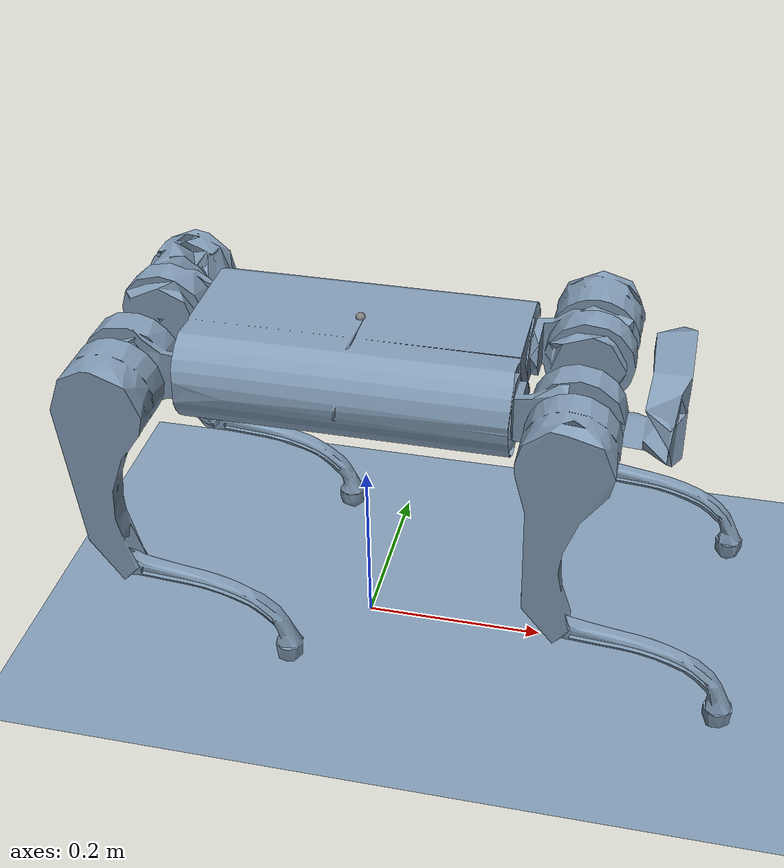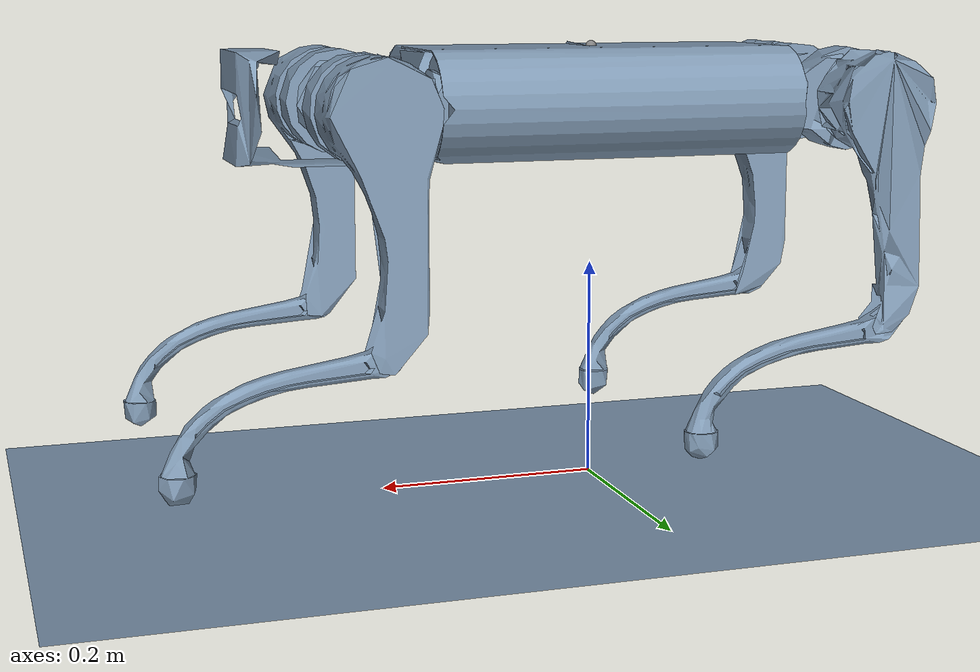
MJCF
<mujoco model="v1 scene">
  <include file="dogvlai.xml"/>

  <statistic center="1.0 0.7 1.0" extent="0.8"/>

  <visual>
    <headlight diffuse="0.6 0.6 0.6" ambient="0.1 0.1 0.1" specular="0.9 0.9 0.9"/>
    <rgba haze="0.15 0.25 0.35 1"/>
    <global azimuth="-140" elevation="-20"/>
  </visual>

  <asset>
    <texture type="skybox" builtin="flat" rgb1="0.5 0.5 0.5" rgb2="0.5 0.5 0.5" width="512" height="3072"/>
    <texture type="2d" name="groundplane" builtin="checker" mark="edge" rgb1="0 0.933 0.933" rgb2="0.6 1 1" markrgb="0.8 0.8 0.8" width="300" height="300"/>
    <material name="groundplane" texture="groundplane" texuniform="true" texrepeat="5 5" reflectance="0.2" />
  </asset>

  <worldbody>
    <light pos="1 0 3.5" dir="0 0 -1" directional="true"/>
    <geom name="floor" size="0 0 0.05" type="plane" material="groundplane" friction="2.0 0.005 0.0001" />
  </worldbody>
</mujoco>

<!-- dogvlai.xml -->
<mujoco model="dogVLAI">

  <compiler angle="radian" meshdir="../meshes/" />
    <size njmax="500" nconmax="100" />
    <option gravity='0 0 -9.806' iterations='50' solver='Newton' timestep='0.004'/>

    <default>
        <geom contype="1" conaffinity="1" friction="0.6 0.3 0.3" rgba="0.5 0.6 0.7 1" margin="0.001" group="0"/>

        <light castshadow="false" diffuse="1 1 1"/>
        <motor ctrlrange="-60 60" ctrllimited="true"/>
        <camera fovy="60"/>
        <joint damping="1" armature="0.01" frictionloss="0.1" />

    </default>

  <asset>
    <material name="orange" rgba="0.12 0.15 0.2 1.0" />
    <material name="red" rgba="0.89804 0.91765 0.92941 1" />
    <material name="default_material" rgba="0.7 0.7 0.7 1" />
    <material name="collision_material" rgba="1.0 0.28 0.1 0.9" />
    <mesh name="base_link.STL" file="../meshes/base_link.STL" />
    <mesh name="leg_FR1_link.STL" file="../meshes/leg_FR1_link.STL" />
    <mesh name="leg_FR2_link.STL" file="../meshes/leg_FR2_link.STL" />
    <mesh name="leg_FR3_link.STL" file="../meshes/leg_FR3_link.STL" />
    <mesh name="leg_FL1_link.STL" file="../meshes/leg_FL1_link.STL" />
    <mesh name="leg_FL2_link.STL" file="../meshes/leg_FL2_link.STL" />
    <mesh name="leg_FL3_link.STL" file="../meshes/leg_FL3_link.STL" />
    <mesh name="leg_BL1_link.STL" file="../meshes/leg_BL1_link.STL" />
    <mesh name="leg_BL2_link.STL" file="../meshes/leg_BL2_link.STL" />
    <mesh name="leg_BL3_link.STL" file="../meshes/leg_BL3_link.STL" />
    <mesh name="leg_BR1_link.STL" file="../meshes/leg_BR1_link.STL" />
    <mesh name="leg_BR2_link.STL" file="../meshes/leg_BR2_link.STL" />
    <mesh name="leg_BR3_link.STL" file="../meshes/leg_BR3_link.STL" />
  </asset>

<default>
    <default class="robot">
      <default class="motor">
        <joint />
        <motor />
      </default>
      <default class="visual">
        <geom material="visualgeom" contype="0" conaffinity="0" group="2" />
      </default>
      <default class="collision">
        <geom material="collision_material" condim="3" contype="0" conaffinity="1" priority="1" group="1" solref="0.005 1" friction="1 0.01 0.01" />
        <equality solimp="0.99 0.999 1e-05" solref="0.005 1" />
      </default>
    </default>
  </default>

  <visual>
      <headlight diffuse="0.6 0.6 0.6" ambient="0.1 0.1 0.1" specular="0.9 0.9 0.9"/>
      <rgba haze="0.15 0.25 0.35 1"/>
      <global azimuth="-140" elevation="-20"/>
  </visual>

  <worldbody>
    <camera name="track" mode="trackcom" pos="0 -1.3 1.6" xyaxes="1 0 0 0 0.707 0.707"/>

    <body name="base" pos="0. 0. 0.4" quat="1 0 0 0" >
      <freejoint name="floating_base" />
      <geom name="base_visual" pos="0 0 0" quat="1.0 0.0 0.0 0.0" material="default_material" type="box" size="0.0005 0.0005 0.0005" class="visual" />

      <body name="base_link" pos="0 0 0" quat="1.0 0.0 0.0 0.0">
        <inertial pos=" 0 0 0" quat="1.0 0.0 0.0 0.0" mass="3.432" diaginertia="0.0039586 0.0079714 0.00896" />
        <geom name="base_link_collision" pos="0 0 0"  quat="1.0 0.0 0.0 0.0"            type="mesh" mesh="base_link.STL" class="collision" />
        <geom name="base_link_visual"    pos="0 0 0"  quat="1 0 0.0 0.0" material="red" type="mesh" mesh="base_link.STL" class="visual" />

        <site name="imu" pos="0 0 0"/>
        <body name="FL1_hip_link" pos="0.168999872360919 0.0520307406591373 -0.0485" quat="1.0 0.0 0.0 0.0">
          <joint name="FL1_hip_joint" pos="0 0 0" axis="1 0 0" limited="true" range="-0.873 0.8" />
          <inertial pos="0.016891 -0.0002017 1.016E-12" quat="1.0 0.0 0.0 0.0" mass="1.5778" diaginertia="0.0012639 0.0012658 0.0010036" />
          <geom name="FL1_hip_link_visual" pos="0 0 0" quat="1 0 0.0 0.0" material="red" type="mesh" mesh="leg_FL1_link.STL" class="visual" />
          <body name="FL2_thigh_link" pos="0.06 0.0245 0" quat="1.0 0.0 0.0 0.0">
            <joint name="FL2_thigh_joint" pos="0 0 0" axis="0 1 0" limited="true" range="-0.524 3.927" />
            <inertial pos="-0.0020653 0.035858 -0.014157" quat="1.0 0.0 0.0 0.0" mass="1.1111" diaginertia="0.0021475 0.0025741 0.00068032" />
            <geom name="FL2_thigh_link_collision" pos="0 0 0" quat="1.0 0.0 0.0 0.0" type="mesh" mesh="leg_FL2_link.STL" class="collision" />
            <geom name="FL2_thigh_link_visual" pos="0 0 0" quat="1 0 0.0 0.0" material="red" type="mesh" mesh="leg_FL2_link.STL" class="visual" />
            <body name="FL3_calf_link" pos="0.0025 0.0584 -0.19998" quat="1.0 0.0 0.0 0.0">
              <joint name="FL3_calf_joint"  pos="0 0 0" axis="0 1 0" limited="true" range="-1.5 0.6" />
              <inertial pos="0.10213 0.00074994 -0.040058" quat="1.0 0.0 0.0 0.0" mass="0.17626" diaginertia="9.9523e-05 0.00066828 0.0005781" />
              <geom name="FL3_calf_link_collision" pos="0.0 0 0.0" quat="1.0 0.0 0.0 0.0" type="mesh" mesh="leg_FL3_link.STL" class="collision" />
              <geom name="FL3_calf_link_visual" pos="0 0 0" quat="1 0 0.0 0.0" material="red" type="mesh" mesh="leg_FL3_link.STL" class="visual" />
            </body>
          </body>
        </body>
        <body name="FR1_hip_link" pos="0.168999872360919 -0.0519692593408627 -0.0485" quat="1.0 0.0 0.0 0.0">
          <joint name="FR1_hip_joint" pos="0 0 0" axis="1 0 0" limited="true" range="-0.873 0.8" />
          <inertial pos="0.016891 0.0002017 -1.0145E-12" quat="1.0 0.0 0.0 0.0" mass="1.5778" diaginertia="0.0012639 0.0012658 0.0010036" />
          <geom name="FR1_hip_link_visual" pos="0 0 0" quat="1 0 0.0 0.0" material="red" type="mesh" mesh="leg_FR1_link.STL" class="visual" />
          <body name="FR2_thigh_link" pos="0.06 -0.024225 -0.0036585" quat="1.0 0.0 0.0 0.0">
            <joint name="FR2_thigh_joint" pos="0 0 0" axis="0 1 0" limited="true" range="-0.524 3.927" />
            <inertial pos="-0.0020653 -0.035858 -0.014157" quat="1.0 0.0 0.0 0.0" mass="1.1376" diaginertia="0.0022579 0.0026941 0.00069081" />
            <geom name="FR2_thigh_link_collision" pos="0 0 0" quat="1.0 0.0 0.0 0.0" type="mesh" mesh="leg_FR2_link.STL" class="collision" />
            <geom name="FR2_thigh_link_visual" pos="0 0 0" quat="1 0 0.0 0.0" material="red" type="mesh" mesh="leg_FR2_link.STL" class="visual" />
            <body name="FR3_calf_link" pos="0.0025 -0.059525 -0.19632" quat="1.0 0.0 0.0 0.0">
              <joint name="FR3_calf_joint"  pos="0 0 0" axis="0 1 0" limited="true" range="-1.5 0.6"   />
              <inertial pos="0.10213 0.00074994 -0.040058" quat="1.0 0.0 0.0 0.0" mass="0.17626" diaginertia="9.9523e-05 0.00066828 0.0005781" />
              <geom name="FR3_calf_link_collision" pos="0.0 0 0.0" quat="1.0 0.0 0.0 0.0" type="mesh" mesh="leg_FR3_link.STL" class="collision" />
              <geom name="FR3_calf_link_visual" pos="0 0 0" quat="1 0 0.0 0.0" material="red" type="mesh" mesh="leg_FR3_link.STL" class="visual" />
            </body>
          </body>
        </body>
      <body name="BL1_hip_link" pos="-0.169000127639083 0.0519707406591368 -0.048525" quat="1.0 0.0 0.0 0.0">
          <joint name="BL1_hip_joint" pos="0 0 0" axis="1 0 0" limited="true" range="-0.873 0.8" />
          <inertial pos="-0.016891 -0.0002017 -1.0162E-12" quat="1.0 0.0 0.0 0.0" mass="1.5778" diaginertia="0.0012639 0.0012658 0.0010036" />
          <geom name="BL1_hip_link_visual" pos="0 0 0" quat="1 0 0.0 0.0" material="red" type="mesh" mesh="leg_BL1_link.STL" class="visual" />
          <body name="BL2_thigh_link" pos="-0.0600000002585732 0.0244999956993991 0" quat="1.0 0.0 0.0 0.0">
            <joint name="BL2_thigh_joint" pos="0 0 0" axis="0 1 0" limited="true" range="-0.524 3.927" />
            <inertial pos="-0.0020653 0.035858 -0.014157" quat="1.0 0.0 0.0 0.0" mass="1.1151" diaginertia="0.0021439 0.0025741 0.00068394" />
            <geom name="BL2_thigh_link_collision" pos="0 0 0" quat="1.0 0.0 0.0 0.0" type="mesh" mesh="leg_BL2_link.STL" class="collision" />
            <geom name="BL2_thigh_link_visual" pos="0 0 0" quat="1 0 0.0 0.0" material="red" type="mesh" mesh="leg_BL2_link.STL" class="visual" />
            <body name="BL3_calf_link" pos="0.0025 0.0584 -0.19998" quat="1.0 0.0 0.0 0.0">
              <joint name="BL3_calf_joint"  pos="0 0 0" axis="0 1 0" limited="true" range="-1.5 0.6" />
              <inertial pos="0.10213 0.00074994 -0.040058" quat="1.0 0.0 0.0 0.0" mass="0.17626" diaginertia="9.9523e-05 0.00066828 0.0005781" />
              <geom name="BL3_calf_link_collision" pos="0.0 0 0.0" quat="1.0 0.0 0.0 0.0" type="mesh" mesh="leg_BL3_link.STL" class="collision" />
              <geom name="BL3_calf_link_visual" pos="0 0 0" quat="1 0 0.0 0.0" material="red" type="mesh" mesh="leg_BL3_link.STL" class="visual" />
            </body>
          </body>
        </body>
        <body name="BR1_hip_link" pos="-0.169 -0.052029 -0.048525" quat="1.0 0.0 0.0 0.0">
          <joint name="BR1_hip_joint" pos="0 0 0" axis="1 0 0" limited="true" range="-0.873 0.8" />
          <inertial pos="-0.016891 0.0002017 -1.0145E-12" quat="1.0 0.0 0.0 0.0" mass="1.5778" diaginertia="0.0012639 0.0012658 0.0010036" />
          <geom name="BR1_hip_link_visual" pos="0 0 0" quat="1 0 0.0 0.0" material="red" type="mesh" mesh="leg_BR1_link.STL" class="visual" />
          <body name="BR2_thigh_link" pos="-0.06 -0.0245 0" quat="1.0 0.0 0.0 0.0">
            <joint name="BR2_thigh_joint" pos="0 0 0" axis="0 1 0" limited="true" range="-0.524 3.927" />
            <inertial pos="-0.0020653 -0.035858 -0.014157" quat="1.0 0.0 0.0 0.0" mass="1.1376" diaginertia="0.0022531 0.0026941 0.00069561" />
            <geom name="BR2_thigh_link_collision" pos="0 0 0" quat="1.0 0.0 0.0 0.0" type="mesh" mesh="leg_BR2_link.STL" class="collision" />
            <geom name="BR2_thigh_link_visual" pos="0 0 0" quat="1 0 0.0 0.0" material="red" type="mesh" mesh="leg_BR2_link.STL" class="visual" />
            <body name="BR3_calf_link" pos="0.0025 -0.05925 -0.19998" quat="1.0 0.0 0.0 0.0">
              <joint name="BR3_calf_joint"  pos="0 0 0" axis="0 1 0" limited="true" range="-1.5 0.6" />
              <inertial pos="0.10213 0.00074994 -0.040058" quat="1.0 0.0 0.0 0.0" mass="0.17626" diaginertia="9.9523e-05 0.00066828 0.0005781" />
              <geom name="BR3_calf_link_collision" pos="0.0 0 0.0" quat="1.0 0.0 0.0 0.0" type="mesh" mesh="leg_BR3_link.STL" class="collision" />
              <geom name="BR3_calf_link_visual" pos="0 0 0" quat="1 0 0.0 0.0" material="red" type="mesh" mesh="leg_BR3_link.STL" class="visual" />

            </body>
          </body>
        </body>
      </body>
      <site name="base_site" pos="0 0 0" quat="1 0 0 0" />
      <camera name="front_camera" mode="track" fovy="90.0" quat="4.329780281177467e-17 4.329780281177466e-17 0.7071067811865475 0.7071067811865476" pos="0.0 2.0 0.5" />
      <camera name="side_camera" mode="track" fovy="90.0" quat="-0.5 -0.4999999999999999 0.5 0.5000000000000001" pos="-2.0 0.0 0.5" />
    </body>
  </worldbody>

  <actuator>
      <!-- Front Left Leg -->
    <motor name="FL1_hip_joint_ctrl"   joint="FL1_hip_joint"    gear="1"/>
    <motor name="FL2_thigh_joint_ctrl" joint="FL2_thigh_joint"  gear="1"/>
    <motor name="FL3_calf_joint_ctrl"  joint="FL3_calf_joint"  gear="1"/>

    <!-- Front Right Leg -->
    <motor name="FR1_hip_joint_ctrl"   joint="FR1_hip_joint"    gear="1"/>
    <motor name="FR2_thigh_joint_ctrl" joint="FR2_thigh_joint"  gear="1"/>
    <motor name="FR3_calf_joint_ctrl"  joint="FR3_calf_joint"  gear="1"/>

    <!-- Back Left Leg -->
    <motor name="BL1_hip_joint_ctrl"   joint="BL1_hip_joint"   gear="1"/>
    <motor name="BL2_thigh_joint_ctrl" joint="BL2_thigh_joint"  gear="1"/>
    <motor name="BL3_calf_joint_ctrl"  joint="BL3_calf_joint"  gear="1"/>

    <!-- Back Right Leg -->
    <motor name="BR1_hip_joint_ctrl"   joint="BR1_hip_joint"   gear="1"/>
    <motor name="BR2_thigh_joint_ctrl" joint="BR2_thigh_joint"  gear="1"/>
    <motor name="BR3_calf_joint_ctrl"  joint="BR3_calf_joint"  gear="1"/>
  </actuator>

  <sensor>
    <!-- 同样，将传感器顺序修改为 FL, FR, BL, BR 以保持一致性 -->
    <!-- Joint Position Sensors -->
    <jointpos name="FL1_hip_joint_pos"    joint="FL1_hip_joint" />
    <jointpos name="FL2_thigh_joint_pos"  joint="FL2_thigh_joint"  />
    <jointpos name="FL3_calf_joint_pos"   joint="FL3_calf_joint" />
    <jointpos name="FR1_hip_joint_pos"    joint="FR1_hip_joint"  />
    <jointpos name="FR2_thigh_joint_pos"  joint="FR2_thigh_joint"  />
    <jointpos name="FR3_calf_joint_pos"   joint="FR3_calf_joint" />
    <jointpos name="BL1_hip_joint_pos"    joint="BL1_hip_joint"  />
    <jointpos name="BL2_thigh_joint_pos"  joint="BL2_thigh_joint" />
    <jointpos name="BL3_calf_joint_pos"   joint="BL3_calf_joint"  />
    <jointpos name="BR1_hip_joint_pos"    joint="BR1_hip_joint"  />
    <jointpos name="BR2_thigh_joint_pos"  joint="BR2_thigh_joint" />
    <jointpos name="BR3_calf_joint_pos"   joint="BR3_calf_joint"  />

    <!-- Joint Velocity Sensors -->
    <jointvel name="FL1_hip_joint_vel"    joint="FL1_hip_joint" />
    <jointvel name="FL2_thigh_joint_vel"  joint="FL2_thigh_joint"  />
    <jointvel name="FL3_calf_joint_vel"   joint="FL3_calf_joint" />
    <jointvel name="FR1_hip_joint_vel"    joint="FR1_hip_joint"  />
    <jointvel name="FR2_thigh_joint_vel"  joint="FR2_thigh_joint"  />
    <jointvel name="FR3_calf_joint_vel"   joint="FR3_calf_joint" />
    <jointvel name="BL1_hip_joint_vel"    joint="BL1_hip_joint"  />
    <jointvel name="BL2_thigh_joint_vel"  joint="BL2_thigh_joint" />
    <jointvel name="BL3_calf_joint_vel"   joint="BL3_calf_joint"  />
    <jointvel name="BR1_hip_joint_vel"    joint="BR1_hip_joint"  />
    <jointvel name="BR2_thigh_joint_vel"  joint="BR2_thigh_joint" />
    <jointvel name="BR3_calf_joint_vel"   joint="BR3_calf_joint"  />

    <!-- IMU and Body Sensors -->
    <accelerometer name="Body_Acc" site="imu"/>
    <gyro name="Body_Gyro" site="imu"/>
    <framepos name="Body_Pos" objtype="site" objname="imu"/>
    <framequat name="Body_Quat" objtype="site" objname="imu"/>
  </sensor>

</mujoco>
